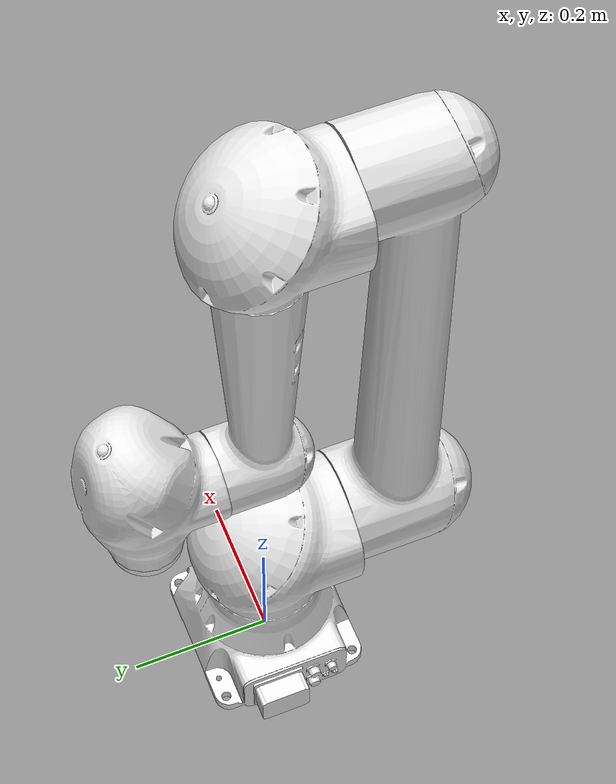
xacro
<?xml version="1.0" ?>
<robot name="motoman_hc10" xmlns:xacro="http://ros.org/wiki/xacro">
  <xacro:include filename="$(find motoman_hc10_support)/urdf/hc10_macro.xacro" />
  <xacro:motoman_hc10 prefix=""/>

  <xacro:include filename="$(find motoman_hc10_support)/urdf/hc10.gazebo.xacro"/>
  <xacro:hc10_gazebo prefix=""/>

  <xacro:include filename="$(find motoman_hc10_support)/urdf/hc10.control.xacro"/>
  <xacro:hc10_control prefix=""/>

  <xacro:include filename="$(find motoman_hc10_support)/urdf/kinect_camera.gazebo.xacro"/>
  <xacro:kinect_sensor prefix=""/>
  <!-- Attach Kinect to table -->
  <joint type="fixed" name="camera_joint">
    <origin xyz="0 -0.05 0.05" rpy="1.57 -1.57 0"/>
    <child link="camera_depth_frame"/>
    <parent link="tool0"/>
    <axis xyz="0 0 0" rpy="0 0 0"/>
    <limit effort="10000" velocity="1000"/>
    <dynamics damping="1.0" friction="1.0"/>
  </joint>

</robot>

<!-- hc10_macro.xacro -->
<robot xmlns:xacro="http://ros.org/wiki/xacro">
  <xacro:macro name="motoman_hc10" params="prefix">
    <xacro:include filename="$(find motoman_resources)/urdf/common_materials.xacro"/>

    <!-- link list -->
    <link name="world"/>

    <joint name="world_fixed" type="fixed">
      <parent link="world"/>
      <child link="${prefix}base_link"/>
    </joint>

    <link name="${prefix}base_link">
      <visual>
        <geometry>
          <mesh filename="package://motoman_hc10_support/meshes/hc10/visual/base_link.dae"/>
        </geometry>
        <xacro:material_yaskawa_blue/>
      </visual>
      <collision>
        <geometry>
          <mesh filename="package://motoman_hc10_support/meshes/hc10/collision/base_link.stl"/>
        </geometry>
      </collision>
      <!-- Inertial params -->
      <inertial>
        <origin xyz="0 0 0" rpy="0 0 0"/>
        <mass value="0.1"/>
        <inertia ixx="0.03" ixy="0.03" ixz="0.03" iyy="0.0" iyz="0.0" izz="0.0"/>
      </inertial>
    </link>
    <link name="${prefix}link_1_s">
      <visual>
        <geometry>
          <mesh filename="package://motoman_hc10_support/meshes/hc10/visual/link_1_s.dae"/>
        </geometry>
        <xacro:material_yaskawa_blue/>
      </visual>
      <collision>
        <geometry>
          <mesh filename="package://motoman_hc10_support/meshes/hc10/collision/link_1_s.stl"/>
        </geometry>
      </collision>
      <!-- Inertial params -->
      <inertial>
        <origin xyz="0 0 0" rpy="0 0 0"/>
        <mass value="0.1"/>
        <inertia ixx="0.03" ixy="0.03" ixz="0.03" iyy="0.0" iyz="0.0" izz="0.0"/>
      </inertial>
    </link>
    <link name="${prefix}link_2_l">
      <visual>
        <geometry>
          <mesh filename="package://motoman_hc10_support/meshes/hc10/visual/link_2_l.dae"/>
        </geometry>
        <xacro:material_yaskawa_blue/>
      </visual>
      <collision>
        <geometry>
          <mesh filename="package://motoman_hc10_support/meshes/hc10/collision/link_2_l.stl"/>
        </geometry>
      </collision>
      <!-- Inertial params -->
      <inertial>
        <origin xyz="0 0 0" rpy="0 0 0"/>
        <mass value="0.1"/>
        <inertia ixx="0.03" ixy="0.03" ixz="0.03" iyy="0.0" iyz="0.0" izz="0.0"/>
      </inertial>
    </link>
    <link name="${prefix}link_3_u">
      <visual>
        <geometry>
          <mesh filename="package://motoman_hc10_support/meshes/hc10/visual/link_3_u.dae"/>
        </geometry>
        <xacro:material_yaskawa_blue/>
      </visual>
      <collision>
        <geometry>
          <mesh filename="package://motoman_hc10_support/meshes/hc10/collision/link_3_u.stl"/>
        </geometry>
      </collision>
      <!-- Inertial params -->
      <inertial>
        <origin xyz="0 0 0" rpy="0 0 0"/>
        <mass value="0.1"/>
        <inertia ixx="0.03" ixy="0.03" ixz="0.03" iyy="0.0" iyz="0.0" izz="0.0"/>
      </inertial>
    </link>
    <link name="${prefix}link_4_r">
      <visual>
        <geometry>
          <mesh filename="package://motoman_hc10_support/meshes/hc10/visual/link_4_r.dae"/>
        </geometry>
        <xacro:material_yaskawa_blue/>
      </visual>
      <collision>
        <geometry>
          <mesh filename="package://motoman_hc10_support/meshes/hc10/collision/link_4_r.stl"/>
        </geometry>
      </collision>
      <!-- Inertial params -->
      <inertial>
        <origin xyz="0 0 0" rpy="0 0 0"/>
        <mass value="0.1"/>
        <inertia ixx="0.03" ixy="0.03" ixz="0.03" iyy="0.0" iyz="0.0" izz="0.0"/>
      </inertial>
    </link>
    <link name="${prefix}link_5_b">
      <visual>
        <geometry>
          <mesh filename="package://motoman_hc10_support/meshes/hc10/visual/link_5_b.dae"/>
        </geometry>
        <xacro:material_yaskawa_blue/>
      </visual>
      <collision>
        <geometry>
          <mesh filename="package://motoman_hc10_support/meshes/hc10/collision/link_5_b.stl"/>
        </geometry>
      </collision>
      <!-- Inertial params -->
      <inertial>
        <origin xyz="0 0 0" rpy="0 0 0"/>
        <mass value="0.1"/>
        <inertia ixx="0.03" ixy="0.03" ixz="0.03" iyy="0.0" iyz="0.0" izz="0.0"/>
      </inertial>
    </link>
    <link name="${prefix}link_6_t">
      <visual>
        <geometry>
          <mesh filename="package://motoman_hc10_support/meshes/hc10/visual/link_6_t.dae"/>
        </geometry>
        <xacro:material_yaskawa_blue/>
      </visual>
      <collision>
        <geometry>
          <mesh filename="package://motoman_hc10_support/meshes/hc10/collision/link_6_t.stl"/>
        </geometry>
      </collision>
      <!-- Inertial params -->
      <inertial>
        <origin xyz="0 0 0" rpy="0 0 0"/>
        <mass value="0.1"/>
        <inertia ixx="0.03" ixy="0.03" ixz="0.03" iyy="0.0" iyz="0.0" izz="0.0"/>
      </inertial>
    </link>
    <link name="${prefix}tool0"/>
    <!-- end of link list -->

    <!-- joint list -->
    <joint name="${prefix}joint_1_s" type="revolute">
      <parent link="${prefix}base_link"/>
      <child link="${prefix}link_1_s"/>
      <origin xyz="0 0 0.275" rpy="0 0 0" />
      <axis xyz="0 0 1" />
      <limit lower="${radians(-180)}" upper="${radians(180)}" effort="368.48" velocity="${radians(130)}"/>
      <!-- dynamics damping -->
      <dynamics damping="1"/>
    </joint>
    <joint name="${prefix}joint_2_l" type="revolute">
      <parent link="${prefix}link_1_s"/>
      <child link="${prefix}link_2_l"/>
      <origin xyz="0 0 0" rpy="0 0 0" />
      <axis xyz="0 1 0" />
      <limit lower="${radians(-180)}" upper="${radians(180)}" effort="368.48" velocity="${radians(130)}"/>
      <!-- dynamics damping -->
      <dynamics damping="1"/>
    </joint>
    <joint name="${prefix}joint_3_u" type="revolute">
      <parent link="${prefix}link_2_l"/>
      <child link="${prefix}link_3_u"/>
      <origin xyz="0 0 0.700" rpy="0 0 0" />
      <axis xyz="0 -1 0" />
      <limit lower="${radians(-5)}" upper="${radians(355)}" effort="141.12" velocity="${radians(180)}"/>
      <!-- dynamics damping -->
      <dynamics damping="1"/>
    </joint>
    <joint name="${prefix}joint_4_r" type="revolute">
      <parent link="${prefix}link_3_u"/>
      <child link="${prefix}link_4_r"/>
      <origin xyz="0 0 -0.500" rpy="0 0 0" />
      <axis xyz="0 0 1" />
      <limit lower="${radians(-180)}" upper="${radians(180)}" effort="39.20" velocity="${radians(180)}"/>
      <!-- dynamics damping -->
      <dynamics damping="1"/>
    </joint>
    <joint name="${prefix}joint_5_b" type="revolute">
      <parent link="${prefix}link_4_r"/>
      <child link="${prefix}link_5_b"/>
      <origin xyz="0 0.162 0" rpy="0 0 0" />
      <axis xyz="0 -1 0" />
      <limit lower="${radians(-180)}" upper="${radians(180)}" effort="31.36" velocity="${radians(250)}"/>
      <!-- dynamics damping -->
      <dynamics damping="1"/>
    </joint>
    <joint name="${prefix}joint_6_t" type="revolute">
      <parent link="${prefix}link_5_b"/>
      <child link="${prefix}link_6_t"/>
      <origin xyz="0 0 0" rpy="0 0 0" />
      <axis xyz="0 0 1" />
      <limit lower="${radians(-180)}" upper="${radians(180)}" effort="31.36" velocity="${radians(250)}"/>
      <!-- dynamics damping -->
      <dynamics damping="1"/>
    </joint>
    <joint name="${prefix}joint_6_t-tool0" type="fixed">
      <origin xyz="0 0 -0.130" rpy="${pi} 0 0"/>
      <parent link="${prefix}link_6_t"/>
      <child link="${prefix}tool0"/>
    </joint>
    <!-- end of joint list -->

    <!-- ROS base_link to Robot Manufacturer World Coordinates transform -->
    <link name="${prefix}base" />
    <joint name="${prefix}base_link-base" type="fixed">
      <origin xyz="0 0 0.275" rpy="0 0 0"/>
      <parent link="${prefix}base_link"/>
      <child link="${prefix}base"/>
    </joint>
  </xacro:macro>
</robot>

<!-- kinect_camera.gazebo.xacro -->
<robot xmlns:xacro="http://ros.org/wiki/xacro">
  <xacro:macro name="kinect_sensor" params="prefix">

    <gazebo reference="camera_depth_frame">
        <sensor name="kinect_camera" type="depth">
            <update_rate>20</update_rate>
            <camera>
                <horizontal_fov>1.047198</horizontal_fov>
                <image>
                    <width>640</width>
                    <height>480</height>
                    <format>B8G8R8</format>
                </image>
                <clip>
                    <near>0.05</near>
                    <far>3</far>
                </clip>
            </camera>
            <plugin name="kinect_controller" filename="libgazebo_ros_openni_kinect.so">
            <baseline>0.1</baseline>
            <alwaysOn>true</alwaysOn>
            <updateRate>10</updateRate>
            <cameraName>camera_ir</cameraName>
            <imageTopicName>/camera/color/image_raw</imageTopicName>
            <cameraInfoTopicName>/camera/color/camera_info</cameraInfoTopicName>
            <depthImageTopicName>/camera/depth/image_raw</depthImageTopicName>
            <depthImageCameraInfoTopicName>/camera/depth/camera_info</depthImageCameraInfoTopicName>
            <pointCloudTopicName>/camera/depth/points</pointCloudTopicName>
            <frameName>camera_depth_frame</frameName>
            <distortion_k1>0.0</distortion_k1>
            <distortion_k2>0.0</distortion_k2>
            <distortion_k3>0.0</distortion_k3>
            <distortion_t1>0.0</distortion_t1>
            <distortion_t2>0.0</distortion_t2>
            <pointCloudCutoff>0.16</pointCloudCutoff>
            <pointCloudCutoffMax>10.0</pointCloudCutoffMax>
            </plugin>
        </sensor>
    </gazebo>

    <link name="camera_depth_frame"/>

    </xacro:macro>
</robot>
